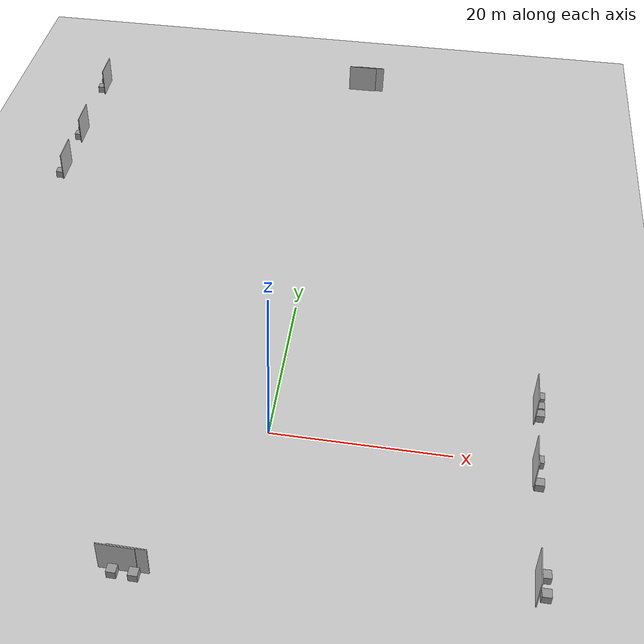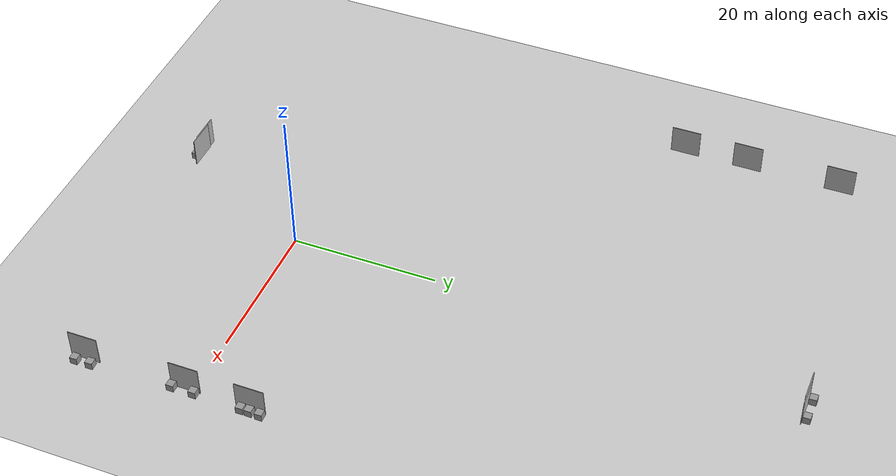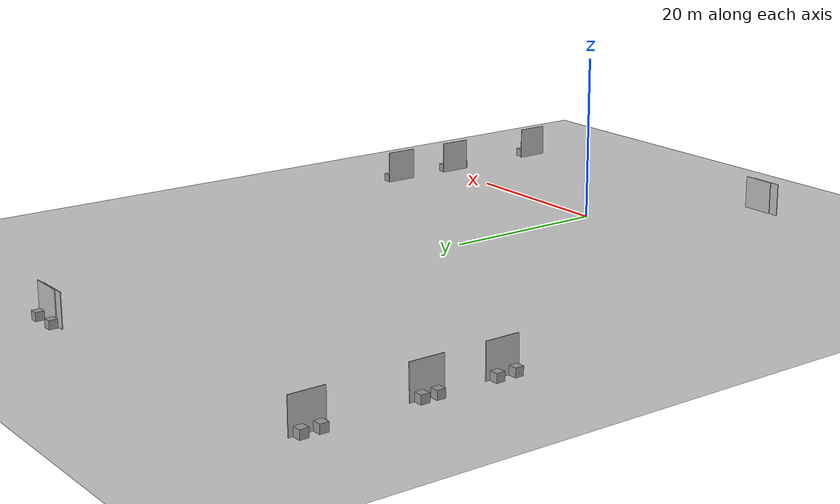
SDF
<sdf version="1.7">
 <world name="default">
  <model name="ground_plane">
   <static>1</static>
   <link name="link">
    <collision name="collision">
     <geometry><plane><normal>0 0 1</normal><size>400 400</size></plane></geometry>
     <surface><friction><ode><mu>100</mu><mu2>50</mu2></ode></friction></surface>
    </collision>
    <visual name="visual">
     <cast_shadows>0</cast_shadows>
     <geometry><plane><normal>0 0 1</normal><size>400 400</size></plane></geometry>
     <material>
      <script><uri>file://media/materials/scripts/gazebo.material</uri><name>Gazebo/Grey</name></script>
     </material>
    </visual>
   </link>
  </model>
  <light name="sun" type="directional">
   <pose>0 0 10 0 -0 0</pose>
   <diffuse>0.8 0.8 0.8 1</diffuse>
   <specular>0.2 0.2 0.2 1</specular>
   <attenuation>
    <range>1000</range>
    <constant>0.9</constant>
    <linear>0.01</linear>
    <quadratic>0.001</quadratic>
   </attenuation>
   <direction>-0.5 0.1 -0.9</direction>
   <spot><inner_angle>0</inner_angle><outer_angle>0</outer_angle><falloff>0</falloff></spot>
  </light>
  <gravity>0 0 -9.8</gravity>
  <magnetic_field>6e-06 2.3e-05 -4.2e-05</magnetic_field>
  <atmosphere type="adiabatic"/>
  <physics name="default_physics" default="0" type="ode">
   <max_step_size>0.001</max_step_size>
   <real_time_factor>1</real_time_factor>
   <real_time_update_rate>1000</real_time_update_rate>
  </physics>
  <scene><ambient>0.4 0.4 0.4 1</ambient><background>0.7 0.7 0.7 1</background><shadows>1</shadows></scene>
  <audio><device>default</device></audio>
  <spherical_coordinates>
   <surface_model>EARTH_WGS84</surface_model>
   <latitude_deg>0</latitude_deg>
   <longitude_deg>0</longitude_deg>
   <elevation>0</elevation>
   <heading_deg>0</heading_deg>
  </spherical_coordinates>
  <model name="unit_box_2">
   <pose>29.2337 9.41174 0.499995 0 -1e-05 -5e-05</pose>
   <link name="link">
    <inertial>
     <mass>1</mass>
     <inertia>
      <ixx>0.166667</ixx>
      <ixy>0</ixy>
      <ixz>0</ixz>
      <iyy>0.166667</iyy>
      <iyz>0</iyz>
      <izz>0.166667</izz>
     </inertia>
    </inertial>
    <collision name="collision"><geometry><box><size>1 1 1</size></box></geometry></collision>
    <visual name="visual">
     <geometry><box><size>1 1 1</size></box></geometry>
     <material>
      <script><name>Gazebo/Grey</name><uri>file://media/materials/scripts/gazebo.material</uri></script>
     </material>
    </visual>
   </link>
  </model>
  <model name="unit_box_3">
   <pose>29.1886 7.99612 0.499995 -1e-05 0 0.000166</pose>
   <link name="link">
    <inertial>
     <mass>1</mass>
     <inertia>
      <ixx>0.166667</ixx>
      <ixy>0</ixy>
      <ixz>0</ixz>
      <iyy>0.166667</iyy>
      <iyz>0</iyz>
      <izz>0.166667</izz>
     </inertia>
    </inertial>
    <collision name="collision"><geometry><box><size>1 1 1</size></box></geometry></collision>
    <visual name="visual">
     <geometry><box><size>1 1 1</size></box></geometry>
     <material>
      <script><name>Gazebo/Grey</name><uri>file://media/materials/scripts/gazebo.material</uri></script>
     </material>
    </visual>
   </link>
  </model>
  <model name="Van_gogh1_0">
   <pose>28.6336 9.3986 2 -0 -1e-06 -3e-06</pose>
   <link name="box">
    <pose>0 -1.5 0 0 -0 0</pose>
    <collision name="collision"><geometry><box><size>0.1 4 4</size></box></geometry></collision>
    <visual name="visual">
     <geometry><box><size>0.1 4 4</size></box></geometry>
     <material>
      <script>
       <uri>model://van_gogh1/materials/scripts</uri>
       <uri>model://van_gogh1/materials/textures</uri>
       <name>Van_gogh1/Image</name>
      </script>
     </material>
    </visual>
    <inertial>
     <inertia><ixx>1</ixx><ixy>0</ixy><ixz>0</ixz><iyy>1</iyy><iyz>0</iyz><izz>1</izz></inertia>
     <mass>1</mass>
    </inertial>
   </link>
  </model>
  <model name="unit_box_8">
   <pose>29.1837 6.83522 0.499995 -1e-05 -0 5e-06</pose>
   <link name="link">
    <inertial>
     <mass>1</mass>
     <inertia>
      <ixx>0.166667</ixx>
      <ixy>0</ixy>
      <ixz>0</ixz>
      <iyy>0.166667</iyy>
      <iyz>0</iyz>
      <izz>0.166667</izz>
     </inertia>
    </inertial>
    <collision name="collision"><geometry><box><size>1 1 1</size></box></geometry></collision>
    <visual name="visual">
     <geometry><box><size>1 1 1</size></box></geometry>
     <material>
      <script><name>Gazebo/Grey</name><uri>file://media/materials/scripts/gazebo.material</uri></script>
     </material>
    </visual>
   </link>
  </model>
  <model name="Van_gogh1_clone_clone_clone">
   <pose>-13.2499 -19.4052 1.99999 -2e-06 4.1e-05 1.56266</pose>
   <link name="box">
    <pose>0 -1.5 0 0 -0 0</pose>
    <collision name="collision"><geometry><box><size>0.1 4 4</size></box></geometry></collision>
    <visual name="visual">
     <geometry><box><size>0.1 4 4</size></box></geometry>
     <material>
      <script>
       <uri>model://van_gogh1/materials/scripts</uri>
       <uri>model://van_gogh1/materials/textures</uri>
       <name>Van_gogh1/Image</name>
      </script>
     </material>
    </visual>
    <inertial>
     <inertia><ixx>1</ixx><ixy>0</ixy><ixz>0</ixz><iyy>1</iyy><iyz>0</iyz><izz>1</izz></inertia>
     <mass>1</mass>
    </inertial>
   </link>
  </model>
  <model name="Van_gogh1_0_clone">
   <pose>28.6365 -13.4668 2 0 -7e-06 -2.4e-05</pose>
   <link name="box">
    <pose>0 -1.5 0 0 -0 0</pose>
    <collision name="collision"><geometry><box><size>0.1 4 4</size></box></geometry></collision>
    <visual name="visual">
     <geometry><box><size>0.1 4 4</size></box></geometry>
     <material>
      <script>
       <uri>model://van_gogh1/materials/scripts</uri>
       <uri>model://van_gogh1/materials/textures</uri>
       <name>Van_gogh1/Image</name>
      </script>
     </material>
    </visual>
    <inertial>
     <inertia><ixx>1</ixx><ixy>0</ixy><ixz>0</ixz><iyy>1</iyy><iyz>0</iyz><izz>1</izz></inertia>
     <mass>1</mass>
    </inertial>
   </link>
  </model>
  <model name="unit_box_8_clone">
   <pose>29.5601 -13.7609 0.499995 -0 -1e-05 0.030245</pose>
   <link name="link">
    <inertial>
     <mass>1</mass>
     <inertia>
      <ixx>0.166667</ixx>
      <ixy>0</ixy>
      <ixz>0</ixz>
      <iyy>0.166667</iyy>
      <iyz>0</iyz>
      <izz>0.166667</izz>
     </inertia>
    </inertial>
    <collision name="collision"><geometry><box><size>1 1 1</size></box></geometry></collision>
    <visual name="visual">
     <geometry><box><size>1 1 1</size></box></geometry>
     <material>
      <script><name>Gazebo/Grey</name><uri>file://media/materials/scripts/gazebo.material</uri></script>
     </material>
    </visual>
   </link>
  </model>
  <model name="unit_box_2_clone_0">
   <pose>29.5587 -15.8887 0.499995 -0 1e-05 -0.000163</pose>
   <link name="link">
    <inertial>
     <mass>1</mass>
     <inertia>
      <ixx>0.166667</ixx>
      <ixy>0</ixy>
      <ixz>0</ixz>
      <iyy>0.166667</iyy>
      <iyz>0</iyz>
      <izz>0.166667</izz>
     </inertia>
    </inertial>
    <collision name="collision"><geometry><box><size>1 1 1</size></box></geometry></collision>
    <visual name="visual">
     <geometry><box><size>1 1 1</size></box></geometry>
     <material>
      <script><name>Gazebo/Grey</name><uri>file://media/materials/scripts/gazebo.material</uri></script>
     </material>
    </visual>
   </link>
  </model>
  <model name="Van_gogh1_0_clone_1">
   <pose>-36.1897 65.8585 1.99999 -2e-06 -5e-06 0.007832</pose>
   <link name="box">
    <pose>0 -1.5 0 0 -0 0</pose>
    <collision name="collision"><geometry><box><size>0.1 4 4</size></box></geometry></collision>
    <visual name="visual">
     <geometry><box><size>0.1 4 4</size></box></geometry>
     <material>
      <script>
       <uri>model://van_gogh1/materials/scripts</uri>
       <uri>model://van_gogh1/materials/textures</uri>
       <name>Van_gogh1/Image</name>
      </script>
     </material>
    </visual>
    <inertial>
     <inertia><ixx>1</ixx><ixy>0</ixy><ixz>0</ixz><iyy>1</iyy><iyz>0</iyz><izz>1</izz></inertia>
     <mass>1</mass>
    </inertial>
   </link>
  </model>
  <model name="unit_box_2_clone_1_clone_clone">
   <pose>-36.7391 65.3428 0.499995 -1e-05 -0 0.007771</pose>
   <link name="link">
    <inertial>
     <mass>1</mass>
     <inertia>
      <ixx>0.166667</ixx>
      <ixy>0</ixy>
      <ixz>0</ixz>
      <iyy>0.166667</iyy>
      <iyz>0</iyz>
      <izz>0.166667</izz>
     </inertia>
    </inertial>
    <collision name="collision"><geometry><box><size>1 1 1</size></box></geometry></collision>
    <visual name="visual">
     <geometry><box><size>1 1 1</size></box></geometry>
     <material>
      <script><name>Gazebo/Grey</name><uri>file://media/materials/scripts/gazebo.material</uri></script>
     </material>
    </visual>
   </link>
  </model>
  <model name="unit_box_2_clone_1_clone_clone_0">
   <pose>-36.7278 63.2748 0.499995 -1e-05 -0 0.008026</pose>
   <link name="link">
    <inertial>
     <mass>1</mass>
     <inertia>
      <ixx>0.166667</ixx>
      <ixy>0</ixy>
      <ixz>0</ixz>
      <iyy>0.166667</iyy>
      <iyz>0</iyz>
      <izz>0.166667</izz>
     </inertia>
    </inertial>
    <collision name="collision"><geometry><box><size>1 1 1</size></box></geometry></collision>
    <visual name="visual">
     <geometry><box><size>1 1 1</size></box></geometry>
     <material>
      <script><name>Gazebo/Grey</name><uri>file://media/materials/scripts/gazebo.material</uri></script>
     </material>
    </visual>
   </link>
  </model>
  <model name="Van_gogh1_0_clone_1_clone">
   <pose>-36.0885 52.928 2 0 1e-06 0.007815</pose>
   <link name="box">
    <pose>0 -1.5 0 0 -0 0</pose>
    <collision name="collision"><geometry><box><size>0.1 4 4</size></box></geometry></collision>
    <visual name="visual">
     <geometry><box><size>0.1 4 4</size></box></geometry>
     <material>
      <script>
       <uri>model://van_gogh1/materials/scripts</uri>
       <uri>model://van_gogh1/materials/textures</uri>
       <name>Van_gogh1/Image</name>
      </script>
     </material>
    </visual>
    <inertial>
     <inertia><ixx>1</ixx><ixy>0</ixy><ixz>0</ixz><iyy>1</iyy><iyz>0</iyz><izz>1</izz></inertia>
     <mass>1</mass>
    </inertial>
   </link>
  </model>
  <model name="unit_box_2_clone_1_clone_clone_0_clone">
   <pose>-36.6228 50.5362 0.499995 -1e-05 0 0.009548</pose>
   <link name="link">
    <inertial>
     <mass>1</mass>
     <inertia>
      <ixx>0.166667</ixx>
      <ixy>0</ixy>
      <ixz>0</ixz>
      <iyy>0.166667</iyy>
      <iyz>0</iyz>
      <izz>0.166667</izz>
     </inertia>
    </inertial>
    <collision name="collision"><geometry><box><size>1 1 1</size></box></geometry></collision>
    <visual name="visual">
     <geometry><box><size>1 1 1</size></box></geometry>
     <material>
      <script><name>Gazebo/Grey</name><uri>file://media/materials/scripts/gazebo.material</uri></script>
     </material>
    </visual>
   </link>
  </model>
  <model name="unit_box_2_clone_1_clone_clone_clone">
   <pose>-36.6345 52.3484 0.499996 9e-06 -0 0.00785</pose>
   <link name="link">
    <inertial>
     <mass>1</mass>
     <inertia>
      <ixx>0.166667</ixx>
      <ixy>0</ixy>
      <ixz>0</ixz>
      <iyy>0.166667</iyy>
      <iyz>0</iyz>
      <izz>0.166667</izz>
     </inertia>
    </inertial>
    <collision name="collision"><geometry><box><size>1 1 1</size></box></geometry></collision>
    <visual name="visual">
     <geometry><box><size>1 1 1</size></box></geometry>
     <material>
      <script><name>Gazebo/Grey</name><uri>file://media/materials/scripts/gazebo.material</uri></script>
     </material>
    </visual>
   </link>
  </model>
  <model name="Van_gogh1_0_clone_1_clone_clone">
   <pose>-36.0243 44.0867 2 -0 9e-06 0.009296</pose>
   <link name="box">
    <pose>0 -1.5 0 0 -0 0</pose>
    <collision name="collision"><geometry><box><size>0.1 4 4</size></box></geometry></collision>
    <visual name="visual">
     <geometry><box><size>0.1 4 4</size></box></geometry>
     <material>
      <script>
       <uri>model://van_gogh1/materials/scripts</uri>
       <uri>model://van_gogh1/materials/textures</uri>
       <name>Van_gogh1/Image</name>
      </script>
     </material>
    </visual>
    <inertial>
     <inertia><ixx>1</ixx><ixy>0</ixy><ixz>0</ixz><iyy>1</iyy><iyz>0</iyz><izz>1</izz></inertia>
     <mass>1</mass>
    </inertial>
   </link>
  </model>
  <model name="unit_box_2_clone_1_clone_clone_0_clone_clone">
   <pose>-36.5895 43.6094 0.499995 -1e-05 -0 0.028403</pose>
   <link name="link">
    <inertial>
     <mass>1</mass>
     <inertia>
      <ixx>0.166667</ixx>
      <ixy>0</ixy>
      <ixz>0</ixz>
      <iyy>0.166667</iyy>
      <iyz>0</iyz>
      <izz>0.166667</izz>
     </inertia>
    </inertial>
    <collision name="collision"><geometry><box><size>1 1 1</size></box></geometry></collision>
    <visual name="visual">
     <geometry><box><size>1 1 1</size></box></geometry>
     <material>
      <script><name>Gazebo/Grey</name><uri>file://media/materials/scripts/gazebo.material</uri></script>
     </material>
    </visual>
   </link>
  </model>
  <model name="unit_box_2_clone_1_clone_clone_clone_clone">
   <pose>-36.552 41.3188 0.499995 1e-05 0 0.015406</pose>
   <link name="link">
    <inertial>
     <mass>1</mass>
     <inertia>
      <ixx>0.166667</ixx>
      <ixy>0</ixy>
      <ixz>0</ixz>
      <iyy>0.166667</iyy>
      <iyz>0</iyz>
      <izz>0.166667</izz>
     </inertia>
    </inertial>
    <collision name="collision"><geometry><box><size>1 1 1</size></box></geometry></collision>
    <visual name="visual">
     <geometry><box><size>1 1 1</size></box></geometry>
     <material>
      <script><name>Gazebo/Grey</name><uri>file://media/materials/scripts/gazebo.material</uri></script>
     </material>
    </visual>
   </link>
  </model>
  <model name="Van_gogh1_clone_clone_clone_clone">
   <pose>-12.0889 -19.3146 2 0 3.9e-05 1.5627</pose>
   <link name="box">
    <pose>0 -1.5 0 0 -0 0</pose>
    <collision name="collision"><geometry><box><size>0.1 4 4</size></box></geometry></collision>
    <visual name="visual">
     <geometry><box><size>0.1 4 4</size></box></geometry>
     <material>
      <script>
       <uri>model://van_gogh1/materials/scripts</uri>
       <uri>model://van_gogh1/materials/textures</uri>
       <name>Van_gogh1/Image</name>
      </script>
     </material>
    </visual>
    <inertial>
     <inertia><ixx>1</ixx><ixy>0</ixy><ixz>0</ixz><iyy>1</iyy><iyz>0</iyz><izz>1</izz></inertia>
     <mass>1</mass>
    </inertial>
   </link>
  </model>
  <model name="Van_gogh1_clone_clone_clone_clone_clone">
   <pose>1.39242 70.0691 2 2e-06 -1.2e-05 1.57863</pose>
   <link name="box">
    <pose>0 -1.5 0 0 -0 0</pose>
    <collision name="collision"><geometry><box><size>0.1 4 4</size></box></geometry></collision>
    <visual name="visual">
     <geometry><box><size>0.1 4 4</size></box></geometry>
     <material>
      <script>
       <uri>model://van_gogh1/materials/scripts</uri>
       <uri>model://van_gogh1/materials/textures</uri>
       <name>Van_gogh1/Image</name>
      </script>
     </material>
    </visual>
    <inertial>
     <inertia><ixx>1</ixx><ixy>0</ixy><ixz>0</ixz><iyy>1</iyy><iyz>0</iyz><izz>1</izz></inertia>
     <mass>1</mass>
    </inertial>
   </link>
  </model>
  <model name="unit_box_2_clone_1_clone_clone_clone_0_clone_0">
   <pose>2.06939 70.7254 0.499995 -0 1e-05 0.014822</pose>
   <link name="link">
    <inertial>
     <mass>1</mass>
     <inertia>
      <ixx>0.166667</ixx>
      <ixy>0</ixy>
      <ixz>0</ixz>
      <iyy>0.166667</iyy>
      <iyz>0</iyz>
      <izz>0.166667</izz>
     </inertia>
    </inertial>
    <collision name="collision"><geometry><box><size>1 1 1</size></box></geometry></collision>
    <visual name="visual">
     <geometry><box><size>1 1 1</size></box></geometry>
     <material>
      <script><name>Gazebo/Grey</name><uri>file://media/materials/scripts/gazebo.material</uri></script>
     </material>
    </visual>
   </link>
  </model>
  <model name="unit_box_2_clone_1_clone_clone_clone_0_clone_1">
   <pose>5.20843 70.7667 0.499995 -0 1e-05 0.007495</pose>
   <link name="link">
    <inertial>
     <mass>1</mass>
     <inertia>
      <ixx>0.166667</ixx>
      <ixy>0</ixy>
      <ixz>0</ixz>
      <iyy>0.166667</iyy>
      <iyz>0</iyz>
      <izz>0.166667</izz>
     </inertia>
    </inertial>
    <collision name="collision"><geometry><box><size>1 1 1</size></box></geometry></collision>
    <visual name="visual">
     <geometry><box><size>1 1 1</size></box></geometry>
     <material>
      <script><name>Gazebo/Grey</name><uri>file://media/materials/scripts/gazebo.material</uri></script>
     </material>
    </visual>
   </link>
  </model>
  <model name="unit_box_2_clone_1_clone_clone_0_clone_clone_clone">
   <pose>-12.1666 -19.9661 0.499995 0 -1e-05 -0.008085</pose>
   <link name="link">
    <inertial>
     <mass>1</mass>
     <inertia>
      <ixx>0.166667</ixx>
      <ixy>0</ixy>
      <ixz>0</ixz>
      <iyy>0.166667</iyy>
      <iyz>0</iyz>
      <izz>0.166667</izz>
     </inertia>
    </inertial>
    <collision name="collision"><geometry><box><size>1 1 1</size></box></geometry></collision>
    <visual name="visual">
     <geometry><box><size>1 1 1</size></box></geometry>
     <material>
      <script><name>Gazebo/Grey</name><uri>file://media/materials/scripts/gazebo.material</uri></script>
     </material>
    </visual>
   </link>
  </model>
  <model name="unit_box_2_clone_1_clone_clone_0_clone_clone_clone_0">
   <pose>-9.97986 -19.992 0.499995 1e-05 0 -0.009188</pose>
   <link name="link">
    <inertial>
     <mass>1</mass>
     <inertia>
      <ixx>0.166667</ixx>
      <ixy>0</ixy>
      <ixz>0</ixz>
      <iyy>0.166667</iyy>
      <iyz>0</iyz>
      <izz>0.166667</izz>
     </inertia>
    </inertial>
    <collision name="collision"><geometry><box><size>1 1 1</size></box></geometry></collision>
    <visual name="visual">
     <geometry><box><size>1 1 1</size></box></geometry>
     <material>
      <script><name>Gazebo/Grey</name><uri>file://media/materials/scripts/gazebo.material</uri></script>
     </material>
    </visual>
   </link>
  </model>
  <model name="Van_gogh1_0_clone_0">
   <pose>28.5089 0.455826 2 -0 1e-06 3e-06</pose>
   <link name="box">
    <pose>0 -1.5 0 0 -0 0</pose>
    <collision name="collision"><geometry><box><size>0.1 4 4</size></box></geometry></collision>
    <visual name="visual">
     <geometry><box><size>0.1 4 4</size></box></geometry>
     <material>
      <script>
       <uri>model://van_gogh1/materials/scripts</uri>
       <uri>model://van_gogh1/materials/textures</uri>
       <name>Van_gogh1/Image</name>
      </script>
     </material>
    </visual>
    <inertial>
     <inertia><ixx>1</ixx><ixy>0</ixy><ixz>0</ixz><iyy>1</iyy><iyz>0</iyz><izz>1</izz></inertia>
     <mass>1</mass>
    </inertial>
   </link>
  </model>
  <model name="unit_box_8_clone_0">
   <pose>29.0669 -2.69339 0.499995 0 -1e-05 -0.010754</pose>
   <link name="link">
    <inertial>
     <mass>1</mass>
     <inertia>
      <ixx>0.166667</ixx>
      <ixy>0</ixy>
      <ixz>0</ixz>
      <iyy>0.166667</iyy>
      <iyz>0</iyz>
      <izz>0.166667</izz>
     </inertia>
    </inertial>
    <collision name="collision"><geometry><box><size>1 1 1</size></box></geometry></collision>
    <visual name="visual">
     <geometry><box><size>1 1 1</size></box></geometry>
     <material>
      <script><name>Gazebo/Grey</name><uri>file://media/materials/scripts/gazebo.material</uri></script>
     </material>
    </visual>
   </link>
  </model>
  <model name="unit_box_8_clone_1">
   <pose>29.0593 0.325339 0.499995 -1e-05 -0 -5.9e-05</pose>
   <link name="link">
    <inertial>
     <mass>1</mass>
     <inertia>
      <ixx>0.166667</ixx>
      <ixy>0</ixy>
      <ixz>0</ixz>
      <iyy>0.166667</iyy>
      <iyz>0</iyz>
      <izz>0.166667</izz>
     </inertia>
    </inertial>
    <collision name="collision"><geometry><box><size>1 1 1</size></box></geometry></collision>
    <visual name="visual">
     <geometry><box><size>1 1 1</size></box></geometry>
     <material>
      <script><name>Gazebo/Grey</name><uri>file://media/materials/scripts/gazebo.material</uri></script>
     </material>
    </visual>
   </link>
  </model>
  <model name="Van_gogh1_clone_clone_clone_clone_clone_clone">
   <pose>2.53093 70.1785 2 -0 -3.3e-05 1.57889</pose>
   <link name="box">
    <pose>0 -1.5 0 0 -0 0</pose>
    <collision name="collision"><geometry><box><size>0.1 4 4</size></box></geometry></collision>
    <visual name="visual">
     <geometry><box><size>0.1 4 4</size></box></geometry>
     <material>
      <script>
       <uri>model://van_gogh1/materials/scripts</uri>
       <uri>model://van_gogh1/materials/textures</uri>
       <name>Van_gogh1/Image</name>
      </script>
     </material>
    </visual>
    <inertial>
     <inertia><ixx>1</ixx><ixy>0</ixy><ixz>0</ixz><iyy>1</iyy><iyz>0</iyz><izz>1</izz></inertia>
     <mass>1</mass>
    </inertial>
   </link>
  </model>
 </world>
</sdf>
